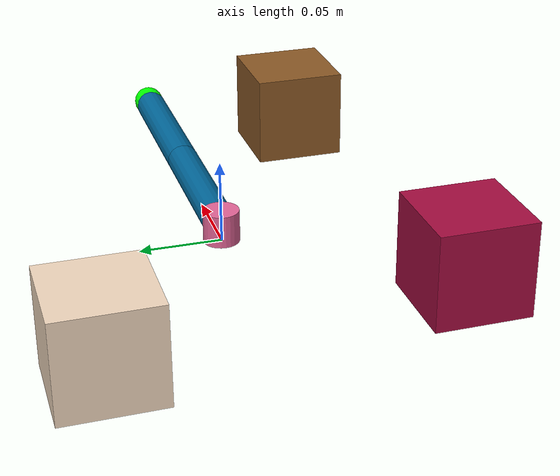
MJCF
<mujoco model="reacher">
	<compiler inertiafromgeom="true" angle="radian"/>
	<default >
		<joint armature="1" damping="1" limited="true"/>
		<geom contype="0" friction="1 0.1 0.1" rgba="0.7 0.7 0 1"/>
	</default>
	<option integrator="RK4" gravity="0 0 -9.81" timestep="0.01"/>
	<worldbody >
		<geom conaffinity="0" name="root" contype="0" fromto="0 0 0 0 0 0.02" rgba="0.9 0.4 0.6 1" type="cylinder" size=".011"/>
		<body name="body0" pos="0 0 .01">
			<geom name="link0" type="capsule" fromto="0 0 0 0.1 0 0" rgba="0.0 0.4 0.6 1.0" size=".01"/>
			<joint limited="true" name="joint0" pos="0 0 0" range="-3.14 3.14" type="hinge" axis="0 0 1"/>
			<body name="body1" pos="0.1 0 0">
				<joint limited="true" name="joint1" pos="0 0 0" range="-3.0 3.0" type="hinge" axis="0 0 1"/>
				<geom name="link1" type="capsule" fromto="0 0 0 0.1 0 0" rgba="0.0 0.4 0.6 1.0" size=".01"/>
				<body name="fingertip" pos="0.11 0 0">
					<geom name="fingertip" pos="0 0 0" contype="0" rgba="0 1 0 1" type="sphere" size=".01"/>
				</body>
			</body>
		</body>
		<body name="target" pos="-0.077225736854 -0.123770575312 0.01">
			<geom conaffinity="0" density="0.00001" contype="0" rgba="0.65 0.05 0.25 1.0" type="box" size="0.03 0.03 0.03"/>
		</body>
		<body name="cube_0" pos="-0.102191832606 0.0900383824218 0.01">
			<geom conaffinity="0" density="0.00001" contype="0" rgba="0.95 0.85 0.75 1.0" type="box" size="0.03 0.03 0.03"/>
		</body>
		<body name="cube_1" pos="0.173938648066 -0.0957290164506 0.01">
			<geom conaffinity="0" density="0.00001" contype="0" rgba="0.55 0.35 0.15 1.0" type="box" size="0.03 0.03 0.03"/>
		</body>
	</worldbody>
	<actuator >
		<motor ctrllimited="true" joint="joint0" ctrlrange="-1.0 1.0" gear="200.0"/>
		<motor ctrllimited="true" joint="joint1" ctrlrange="-1.0 1.0" gear="200.0"/>
	</actuator>
</mujoco>
